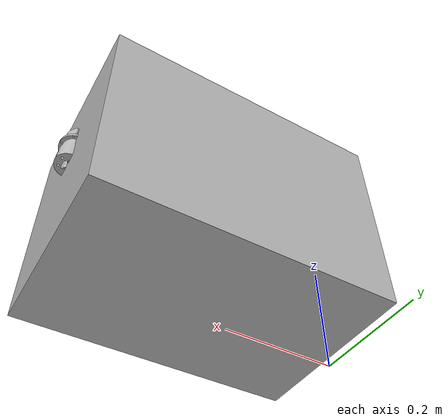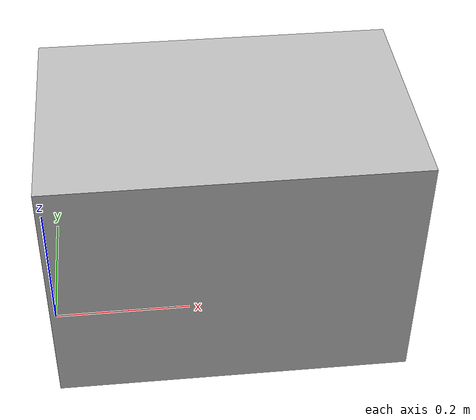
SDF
<sdf version="1.6">
	<model name="shoulder_testbed">
		<link name="link0">
			<self_collide>false</self_collide>
			<pose frame="">0.4866289163564499 0.018103056861802323 0.26884434234581445 0.0 -0.0 0.0</pose>
			<inertial>
				<pose frame="">0.0 0.0 0.0 0 0 0</pose>
				<mass>0.3464496352812503</mass>
				<inertia>
					<ixx>0.025297031599366283</ixx>
					<ixy>-0.0030526335654748257</ixy>
					<ixz>-0.045305746032064935</ixz>
					<iyy>0.10722355095830884</iyy>
					<iyz>-0.0016836400860695052</iyz>
					<izz>0.08225021375925705</izz>
				</inertia>
			</inertial>
			<collision name="link0_collision">
				<geometry>
					<mesh>
						<uri>model://shoulder_testbed/meshes/collisions/link0.stl</uri>
						<scale>0.001 0.001 0.001</scale>
					</mesh>
				</geometry>
			</collision>
			<visual name="link0_visual">
				<geometry>
					<mesh>
						<uri>model://shoulder_testbed/meshes/visuals/link0.stl</uri>
						<scale>0.001 0.001 0.001</scale>
					</mesh>
				</geometry>
			</visual>
		</link>
		<link name="base">
			<self_collide>false</self_collide>
			<pose frame="">0.0 0.0 0.0 0.0 -0.0 0.0</pose>
			<inertial>
				<pose frame="">0.0 0.0 0.0 0 0 0</pose>
				<mass>7.066204716584848</mass>
				<inertia>
					<ixx>0.388197814797746</ixx>
					<ixy>-0.029342053286195286</ixy>
					<ixz>-0.3834872054080739</ixz>
					<iyy>0.8621025029838427</iyy>
					<iyz>-0.028297210967366357</iyz>
					<izz>0.4896168836436841</izz>
				</inertia>
			</inertial>
			<collision name="base_collision">
				<geometry>
					<mesh>
						<uri>model://shoulder_testbed/meshes/collisions/base.stl</uri>
						<scale>0.001 0.001 0.001</scale>
					</mesh>
				</geometry>
			</collision>
			<visual name="base_visual">
				<geometry>
					<mesh>
						<uri>model://shoulder_testbed/meshes/visuals/base.stl</uri>
						<scale>0.001 0.001 0.001</scale>
					</mesh>
				</geometry>
			</visual>
		</link>
		<link name="link1">
			<self_collide>false</self_collide>
			<pose frame="">0.4949823060015265 0.019659601836690785 0.22209582847878995 0.0 -0.0 0.0</pose>
			<inertial>
				<pose frame="">0.0 0.0 0.0 0 0 0</pose>
				<mass>0.6794417520843521</mass>
				<inertia>
					<ixx>0.03409305949924449</ixx>
					<ixy>-0.006611706515550387</ixy>
					<ixz>-0.07468779451939428</ixz>
					<iyy>0.20029437677486592</iyy>
					<iyz>-0.002963627875662352</iyz>
					<izz>0.166927257038415</izz>
				</inertia>
			</inertial>
			<collision name="link1_collision">
				<geometry>
					<mesh>
						<uri>model://shoulder_testbed/meshes/collisions/link1.stl</uri>
						<scale>0.001 0.001 0.001</scale>
					</mesh>
				</geometry>
			</collision>
			<visual name="link1_visual">
				<geometry>
					<mesh>
						<uri>model://shoulder_testbed/meshes/visuals/link1.stl</uri>
						<scale>0.001 0.001 0.001</scale>
					</mesh>
				</geometry>
			</visual>
		</link>
		<link name="sphere_link1">
			<self_collide>false</self_collide>
			<pose frame="">0.46647280910527966 0.01650000000000059 0.3029914267490659 0.0 -0.0 0.0</pose>
			<inertial>
				<pose frame="">0.0 0.0 0.0 0 0 0</pose>
				<mass>0.09022821652718069</mass>
				<inertia>
					<ixx>0.008314932091121193</ixx>
					<ixy>-0.0006944686587959163</ixy>
					<ixz>-0.012752609076428927</ixz>
					<iyy>0.027923746010935026</iyy>
					<iyz>-0.00045108320496681914</iyz>
					<izz>0.019665017075888618</izz>
				</inertia>
			</inertial>
			<collision name="sphere_link1_collision">
				<geometry>
					<mesh>
						<uri>model://shoulder_testbed/meshes/collisions/sphere_link1.stl</uri>
						<scale>0.001 0.001 0.001</scale>
					</mesh>
				</geometry>
			</collision>
			<visual name="sphere_link1_visual">
				<geometry>
					<mesh>
						<uri>model://shoulder_testbed/meshes/visuals/sphere_link1.stl</uri>
						<scale>0.001 0.001 0.001</scale>
					</mesh>
				</geometry>
			</visual>
		</link>
		<link name="sphere_link2">
			<self_collide>false</self_collide>
			<pose frame="">0.4664728091342976 0.016500000000000622 0.30299142677808333 0.0 -0.0 0.0</pose>
			<inertial>
				<pose frame="">0.0 0.0 0.0 0 0 0</pose>
				<mass>0.007102512825359175</mass>
				<inertia>
					<ixx>0.0006540736356054609</ixx>
					<ixy>-5.466663030770365e-05</ixy>
					<ixz>-0.0010038497160048798</ixz>
					<iyy>0.0021976246192501247</iyy>
					<iyz>-3.550800816197733e-05</iyz>
					<izz>0.0015475205780596888</izz>
				</inertia>
			</inertial>
			<collision name="sphere_link2_collision">
				<geometry>
					<mesh>
						<uri>model://shoulder_testbed/meshes/collisions/sphere_link2.stl</uri>
						<scale>0.001 0.001 0.001</scale>
					</mesh>
				</geometry>
			</collision>
			<visual name="sphere_link2_visual">
				<geometry>
					<mesh>
						<uri>model://shoulder_testbed/meshes/visuals/sphere_link2.stl</uri>
						<scale>0.001 0.001 0.001</scale>
					</mesh>
				</geometry>
			</visual>
		</link>
		<joint name="joint_axis3" type="revolute">
			<parent>link0</parent>
			<child>link1</child>
			<pose frame="">-0.001376947087673557 -0.0005398260135122834 0.019889050963209948 0 0 0</pose>
			<axis>
				<xyz>-0.08797303162676305 -0.02782984397695694 0.995734023467422</xyz>
				<limit>
					<lower>-3.141592653589793</lower>
					<upper>3.141592653589793</upper>
				</limit>
				<use_parent_model_frame>0</use_parent_model_frame>
			</axis>
		</joint>
		<joint name="sphere_axis0" type="revolute">
			<parent>base</parent>
			<child>sphere_link1</child>
			<pose frame="">1.4210854715202004e-16 0.0 -1.4210854715202004e-16 0 0 0</pose>
			<axis>
				<xyz>-6.123233995741217e-17 -1.0 2.8727020762175945e-15</xyz>
				<limit>
					<lower>-3.141592653589793</lower>
					<upper>3.141592653589793</upper>
				</limit>
				<use_parent_model_frame>0</use_parent_model_frame>
			</axis>
		</joint>
		<joint name="sphere_axis1" type="revolute">
			<parent>sphere_link1</parent>
			<child>sphere_link2</child>
			<pose frame="">-2.901792583998031e-11 -1.3322676295501878e-17 -2.901767715002279e-11 0 0 0</pose>
			<axis>
				<xyz>-0.7071067811865472 -1.9880093156103293e-15 -0.7071067811865474</xyz>
				<limit>
					<lower>-3.141592653589793</lower>
					<upper>3.141592653589793</upper>
				</limit>
				<use_parent_model_frame>0</use_parent_model_frame>
			</axis>
		</joint>
		<joint name="sphere_axis2" type="revolute">
			<parent>sphere_link2</parent>
			<child>link0</child>
			<pose frame="">-0.020156107251169928 -0.0016030568618017327 0.03414708440325125 0 0 0</pose>
			<axis>
				<xyz>0.7071067811865476 -2.074604921233941e-15 -0.7071067811865478</xyz>
				<limit>
					<lower>-3.141592653589793</lower>
					<upper>3.141592653589793</upper>
				</limit>
				<use_parent_model_frame>0</use_parent_model_frame>
			</axis>
		</joint>
		<plugin filename="libcardsflow_gazebo_plugin.so" name="cardsflow_gazebo_plugin" />
	</model>
</sdf>
